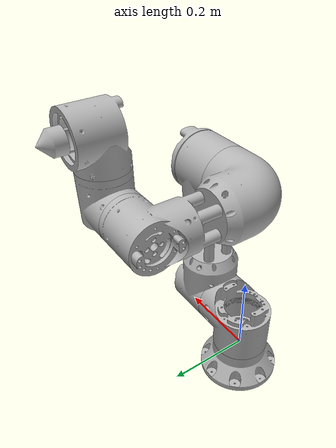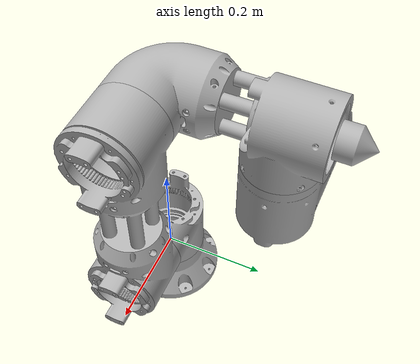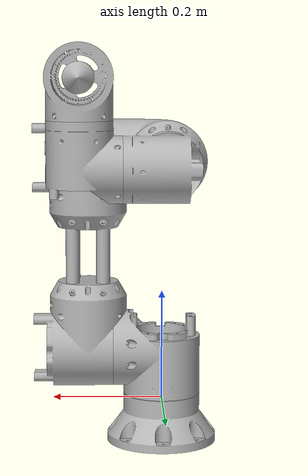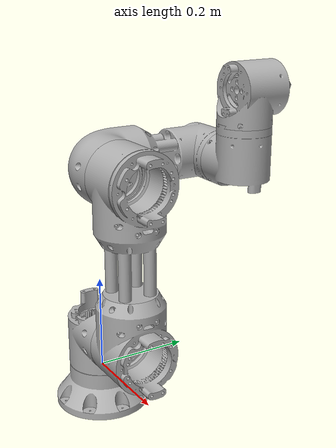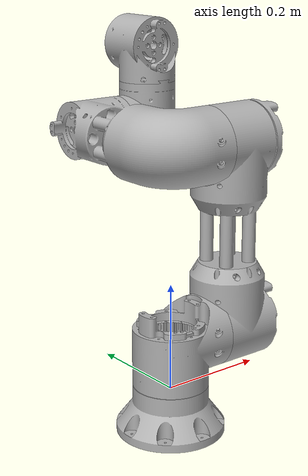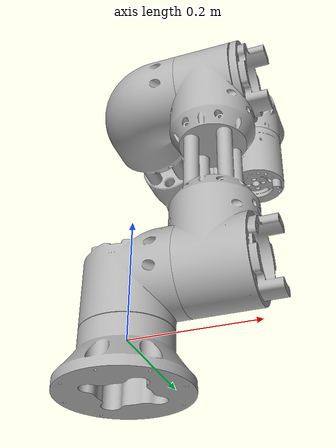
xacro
<?xml version="1.0"?>
<robot xmlns:xacro="http://www.ros.org/wiki/xacro" name="URDF">
    <xacro:arg name="initial_positions_file" default="initial_positions.yaml" />

    <!-- Import URDF urdf file -->
    <xacro:include filename="$(find arm-planner)/urdf/your_robot.urdf" />

    <!-- Import control_xacro -->
    <xacro:include filename="URDF.ros2_control.xacro" />

    <xacro:URDF_ros2_control name="FakeSystem" initial_positions_file="$(arg initial_positions_file)"/>

</robot>

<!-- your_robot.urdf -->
<!-- |    This document was autogenerated by xacro from robot.xacro                    | -->
<!-- |    EDITING THIS FILE BY HAND IS NOT RECOMMENDED                                 | -->
<robot name="URDF">
  <material name="silver">
    <color rgba="0.700 0.700 0.700 1.000"/>
  </material>
  <transmission name="Revolute 1_tran">
    <type>transmission_interface/SimpleTransmission</type>
    <joint name="Revolute 1">
      <hardwareInterface>hardware_interface/EffortJointInterface</hardwareInterface>
    </joint>
    <actuator name="Revolute 1_actr">
      <hardwareInterface>hardware_interface/EffortJointInterface</hardwareInterface>
      <mechanicalReduction>1</mechanicalReduction>
    </actuator>
  </transmission>
  <transmission name="Revolute 2_tran">
    <type>transmission_interface/SimpleTransmission</type>
    <joint name="Revolute 2">
      <hardwareInterface>hardware_interface/EffortJointInterface</hardwareInterface>
    </joint>
    <actuator name="Revolute 2_actr">
      <hardwareInterface>hardware_interface/EffortJointInterface</hardwareInterface>
      <mechanicalReduction>1</mechanicalReduction>
    </actuator>
  </transmission>
  <transmission name="Revolute 3_tran">
    <type>transmission_interface/SimpleTransmission</type>
    <joint name="Revolute 3">
      <hardwareInterface>hardware_interface/EffortJointInterface</hardwareInterface>
    </joint>
    <actuator name="Revolute 3_actr">
      <hardwareInterface>hardware_interface/EffortJointInterface</hardwareInterface>
      <mechanicalReduction>1</mechanicalReduction>
    </actuator>
  </transmission>
  <transmission name="Revolute 4_tran">
    <type>transmission_interface/SimpleTransmission</type>
    <joint name="Revolute 4">
      <hardwareInterface>hardware_interface/EffortJointInterface</hardwareInterface>
    </joint>
    <actuator name="Revolute 4_actr">
      <hardwareInterface>hardware_interface/EffortJointInterface</hardwareInterface>
      <mechanicalReduction>1</mechanicalReduction>
    </actuator>
  </transmission>
  <transmission name="Revolute 5_tran">
    <type>transmission_interface/SimpleTransmission</type>
    <joint name="Revolute 5">
      <hardwareInterface>hardware_interface/EffortJointInterface</hardwareInterface>
    </joint>
    <actuator name="Revolute 5_actr">
      <hardwareInterface>hardware_interface/EffortJointInterface</hardwareInterface>
      <mechanicalReduction>1</mechanicalReduction>
    </actuator>
  </transmission>
  <transmission name="Revolute 6_tran">
    <type>transmission_interface/SimpleTransmission</type>
    <joint name="Revolute 6">
      <hardwareInterface>hardware_interface/EffortJointInterface</hardwareInterface>
    </joint>
    <actuator name="Revolute 6_actr">
      <hardwareInterface>hardware_interface/EffortJointInterface</hardwareInterface>
      <mechanicalReduction>1</mechanicalReduction>
    </actuator>
  </transmission>
  <gazebo>
    <plugin filename="libgazebo_ros_control.so" name="control"/>
  </gazebo>
  <gazebo reference="base_link">
    <material>Gazebo/Silver</material>
    <mu1>0.2</mu1>
    <mu2>0.2</mu2>
    <selfCollide>true</selfCollide>
    <gravity>true</gravity>
  </gazebo>
  <gazebo reference="Link_0_1">
    <material>Gazebo/Silver</material>
    <mu1>0.2</mu1>
    <mu2>0.2</mu2>
    <selfCollide>true</selfCollide>
  </gazebo>
  <gazebo reference="Link_1_1">
    <material>Gazebo/Silver</material>
    <mu1>0.2</mu1>
    <mu2>0.2</mu2>
    <selfCollide>true</selfCollide>
  </gazebo>
  <gazebo reference="Link_2_1">
    <material>Gazebo/Silver</material>
    <mu1>0.2</mu1>
    <mu2>0.2</mu2>
    <selfCollide>true</selfCollide>
  </gazebo>
  <gazebo reference="Link_3_1">
    <material>Gazebo/Silver</material>
    <mu1>0.2</mu1>
    <mu2>0.2</mu2>
    <selfCollide>true</selfCollide>
  </gazebo>
  <gazebo reference="Link_4_1">
    <material>Gazebo/Silver</material>
    <mu1>0.2</mu1>
    <mu2>0.2</mu2>
    <selfCollide>true</selfCollide>
  </gazebo>
  <gazebo reference="Link_5_1">
    <material>Gazebo/Silver</material>
    <mu1>0.2</mu1>
    <mu2>0.2</mu2>
    <selfCollide>true</selfCollide>
  </gazebo>
  <!-- Root link with inertia (kept for dynamic purposes) -->
  <link name="base_link">
    <inertial>
      <origin rpy="0 0 0" xyz="5.500306683749839e-09 1.7690045296987684e-08 -0.04351821247312735"/>
      <mass value="9.665954367017239"/>
      <inertia ixx="0.029174" ixy="0.0" ixz="0.0" iyy="0.029174" iyz="0.0" izz="0.044786"/>
    </inertial>
    <visual>
      <origin rpy="0 0 0" xyz="0 0 0"/>
      <geometry>
        <mesh filename="package://arm-planner/meshes/base_link.stl" scale="0.001 0.001 0.001"/>
      </geometry>
      <material name="silver"/>
    </visual>
    <collision>
      <origin rpy="0 0 0" xyz="0 0 0"/>
      <geometry>
        <mesh filename="package://arm-planner/meshes/base_link.stl" scale="0.001 0.001 0.001"/>
      </geometry>
    </collision>
  </link>
  <!-- Dummy link to serve as new base for KDL -->
  <link name="dummy_base"/>
  <!-- Fixed joint between base_link and dummy_base (no need for joint states) -->
  <joint name="base_to_dummy" type="fixed">
    <origin rpy="0 0 0" xyz="0 0 0"/>
    <parent link="base_link"/>
    <child link="dummy_base"/>
  </joint>
  <!-- JOINT 1: Was "Revolute 1", now "joint1" -->
  <joint name="joint1" type="revolute">
    <origin rpy="0 0 0" xyz="0.0 0.0 0.01"/>
    <parent link="dummy_base"/>
    <child link="Link_0_1"/>
    <axis xyz="0.0 0.0 1.0"/>
    <limit effort="100" lower="-3.141593" upper="3.141593" velocity="100"/>
  </joint>
  <link name="Link_0_1">
    <inertial>
      <origin rpy="0 0 0" xyz="0.025147305768597313 3.714411619225575e-05 0.06827470074076418"/>
      <mass value="9.512665721240847"/>
      <inertia ixx="0.030352" ixy="9e-06" ixz="-0.004461" iyy="0.037217" iyz="-1.6e-05" izz="0.039916"/>
    </inertial>
    <visual>
      <origin rpy="0 0 0" xyz="0 0 -0.01"/>
      <geometry>
        <mesh filename="package://arm-planner/meshes/Link_0_1.stl" scale="0.001 0.001 0.001"/>
      </geometry>
      <material name="silver"/>
    </visual>
    <collision>
      <origin rpy="0 0 0" xyz="0 0 -0.01"/>
      <geometry>
        <mesh filename="package://arm-planner/meshes/Link_0_1.stl" scale="0.001 0.001 0.001"/>
      </geometry>
    </collision>
  </link>
  <!-- JOINT 2: Was "Revolute 2", now "joint2" -->
  <joint name="joint2" type="revolute">
    <origin rpy="0 0 0" xyz="0.0898 -0.0 0.085"/>
    <parent link="Link_0_1"/>
    <child link="Link_1_1"/>
    <axis xyz="-1.0 0.0 0.0"/>
    <limit effort="100" lower="-1.570796" upper="1.570796" velocity="100"/>
  </joint>
  <link name="Link_1_1">
    <inertial>
      <origin rpy="0 0 0" xyz="0.05116110784738716 -1.276329509484605e-09 0.17500000003731517"/>
      <mass value="25.335856608089017"/>
      <inertia ixx="0.54402" ixy="0.0" ixz="0.0003" iyy="0.534675" iyz="0.000331" izz="0.07227"/>
    </inertial>
    <visual>
      <origin rpy="0 0 0" xyz="-0.0898 0 -0.095"/>
      <geometry>
        <mesh filename="package://arm-planner/meshes/Link_1_1.stl" scale="0.001 0.001 0.001"/>
      </geometry>
      <material name="silver"/>
    </visual>
    <collision>
      <origin rpy="0 0 0" xyz="-0.0898 0 -0.095"/>
      <geometry>
        <mesh filename="package://arm-planner/meshes/Link_1_1.stl" scale="0.001 0.001 0.001"/>
      </geometry>
    </collision>
  </link>
  <!-- JOINT 3: Was "Revolute 3", now "joint3" -->
  <joint name="joint3" type="revolute">
    <origin rpy="0 0 0" xyz="0.0 0.0 0.35"/>
    <parent link="Link_1_1"/>
    <child link="Link_2_1"/>
    <axis xyz="-1.0 0.0 0.0"/>
    <limit effort="100" lower="-3.141593" upper="1.047198" velocity="100"/>
  </joint>
  <link name="Link_2_1">
    <inertial>
      <origin rpy="0 0 0" xyz="-0.07858780325051475 0.07482766866821508 -0.00012906577646332185"/>
      <mass value="27.641428291972183"/>
      <inertia ixx="0.291742" ixy="0.015471" ixz="6.9e-05" iyy="0.075237" iyz="0.000231" izz="0.302588"/>
    </inertial>
    <visual>
      <origin rpy="0 0 0" xyz="-0.0898 -0.0 -0.445"/>
      <geometry>
        <mesh filename="package://arm-planner/meshes/Link_2_1.stl" scale="0.001 0.001 0.001"/>
      </geometry>
      <material name="silver"/>
    </visual>
    <collision>
      <origin rpy="0 0 0" xyz="-0.0898 -0.0 -0.445"/>
      <geometry>
        <mesh filename="package://arm-planner/meshes/Link_2_1.stl" scale="0.001 0.001 0.001"/>
      </geometry>
    </collision>
  </link>
  <!-- JOINT 4: Was "Revolute 4", now "joint4" -->
  <joint name="joint4" type="revolute">
    <origin rpy="0 0 0" xyz="-0.0148 0.255 0.0"/>
    <parent link="Link_2_1"/>
    <child link="Link_3_1"/>
    <axis xyz="1.0 0.0 0.0"/>
    <limit effort="100" lower="-4.014257" upper="0.785398" velocity="100"/>
  </joint>
  <link name="Link_3_1">
    <inertial>
      <origin rpy="0 0 0" xyz="0.05280646080955524 -0.00014958827631367244 0.014397391676137572"/>
      <mass value="5.7113026691342785"/>
      <inertia ixx="0.012888" ixy="1.2e-05" ixz="-0.001515" iyy="0.015126" iyz="7.1e-05" izz="0.014242"/>
    </inertial>
    <visual>
      <origin rpy="0 0 0" xyz="-0.075 -0.255 -0.445"/>
      <geometry>
        <mesh filename="package://arm-planner/meshes/Link_3_1.stl" scale="0.001 0.001 0.001"/>
      </geometry>
      <material name="silver"/>
    </visual>
    <collision>
      <origin rpy="0 0 0" xyz="-0.075 -0.255 -0.445"/>
      <geometry>
        <mesh filename="package://arm-planner/meshes/Link_3_1.stl" scale="0.001 0.001 0.001"/>
      </geometry>
    </collision>
  </link>
  <!-- JOINT 5: Was "Revolute 5", now "joint5" -->
  <joint name="joint5" type="revolute">
    <origin rpy="0 0 0" xyz="0.07 0.0 0.08"/>
    <parent link="Link_3_1"/>
    <child link="Link_4_1"/>
    <axis xyz="0.0 0.0 1.0"/>
    <limit effort="100" lower="-3.141593" upper="3.141593" velocity="100"/>
  </joint>
  <link name="Link_4_1">
    <inertial>
      <origin rpy="0 0 0" xyz="2.348099192109321e-05 0.004226979419264587 0.04977103581625053"/>
      <mass value="4.854306730672969"/>
      <inertia ixx="0.010705" ixy="3e-06" ixz="-5e-06" iyy="0.012385" iyz="-0.000517" izz="0.008722"/>
    </inertial>
    <visual>
      <origin rpy="0 0 0" xyz="-0.145 -0.255 -0.525"/>
      <geometry>
        <mesh filename="package://arm-planner/meshes/Link_4_1.stl" scale="0.001 0.001 0.001"/>
      </geometry>
      <material name="silver"/>
    </visual>
    <collision>
      <origin rpy="0 0 0" xyz="-0.145 -0.255 -0.525"/>
      <geometry>
        <mesh filename="package://arm-planner/meshes/Link_4_1.stl" scale="0.001 0.001 0.001"/>
      </geometry>
    </collision>
  </link>
  <!-- JOINT 6: Was "Revolute 6", now "joint6" (type continuous is fine) -->
  <joint name="joint6" type="continuous">
    <origin rpy="0 0 0" xyz="0.0 0.0645 0.07"/>
    <parent link="Link_4_1"/>
    <child link="Link_5_1"/>
    <axis xyz="0.0 -1.0 0.0"/>
  </joint>
  <link name="Link_5_1">
    <inertial>
      <origin rpy="0 0 0" xyz="2.1371793224034263e-15 0.017187500000006017 -3.774758283725532e-14"/>
      <mass value="0.5137812985573593"/>
      <inertia ixx="0.000129" ixy="0.0" ixz="0.0" iyy="0.000145" iyz="0.0" izz="0.000129"/>
    </inertial>
    <visual>
      <origin rpy="0 0 0" xyz="-0.145 -0.3195 -0.595"/>
      <geometry>
        <mesh filename="package://arm-planner/meshes/Link_5_1.stl" scale="0.001 0.001 0.001"/>
      </geometry>
      <material name="silver"/>
    </visual>
    <collision>
      <origin rpy="0 0 0" xyz="-0.145 -0.3195 -0.595"/>
      <geometry>
        <mesh filename="package://arm-planner/meshes/Link_5_1.stl" scale="0.001 0.001 0.001"/>
      </geometry>
    </collision>
  </link>
</robot>
